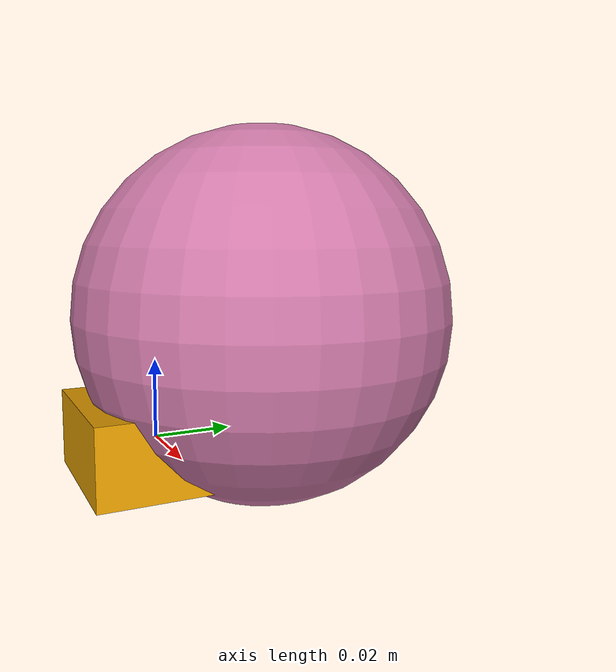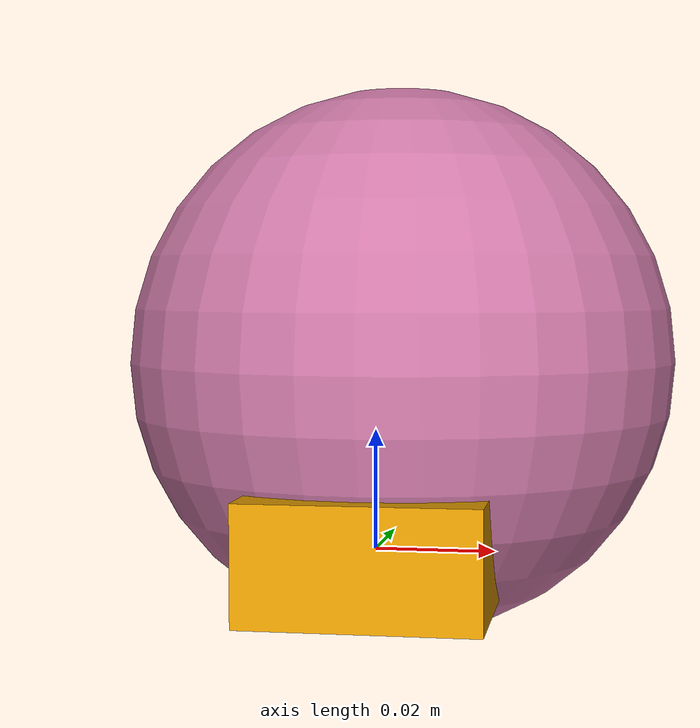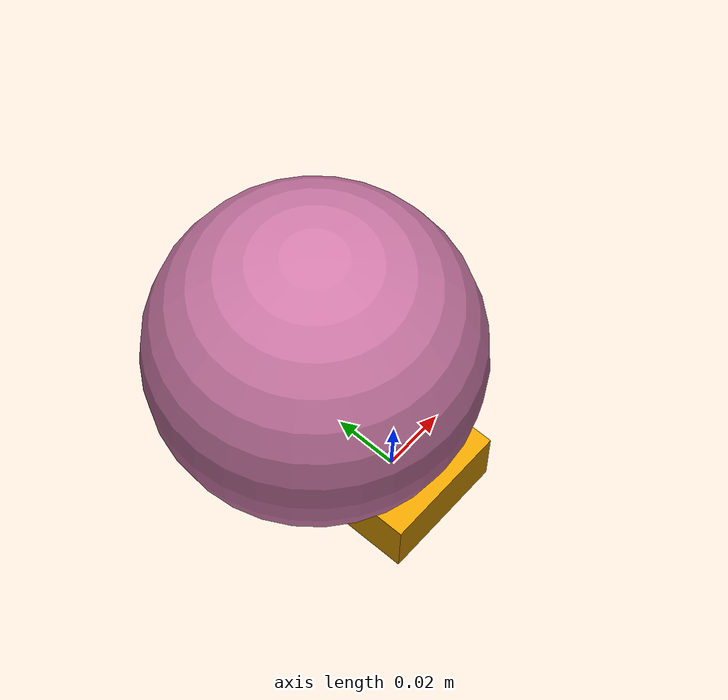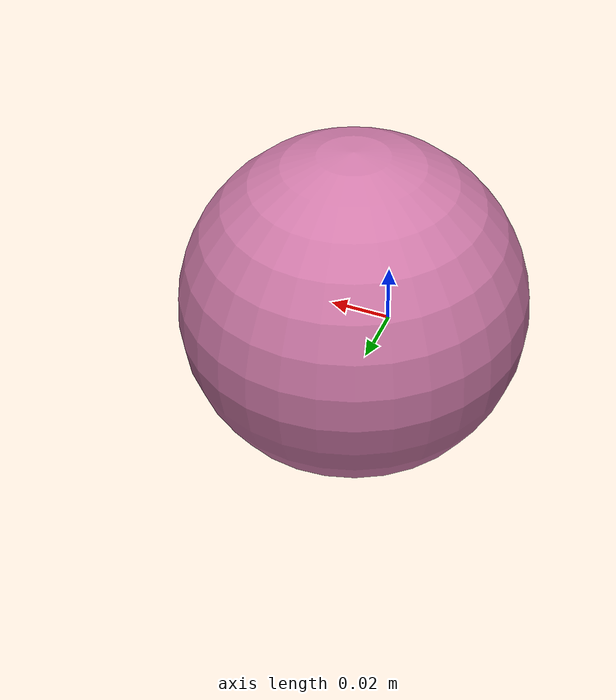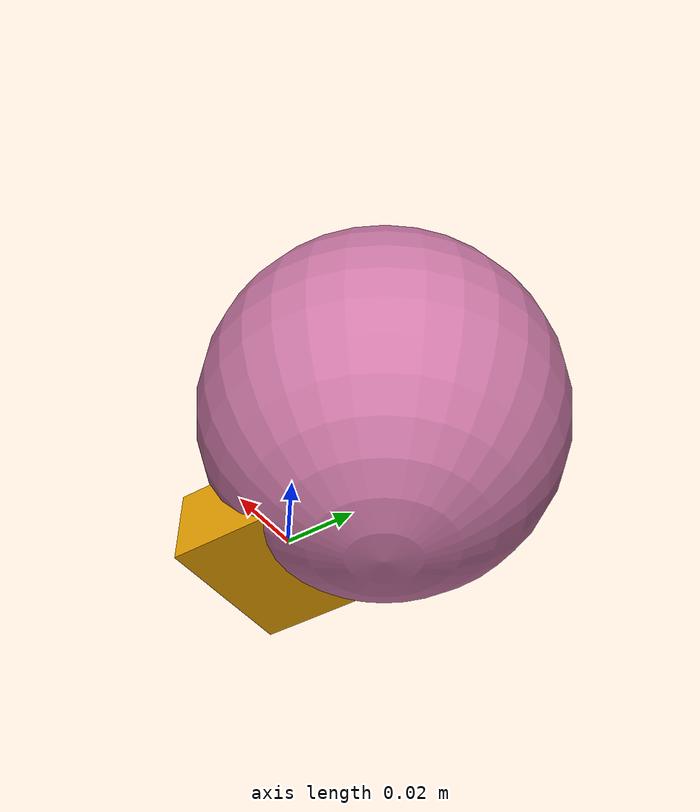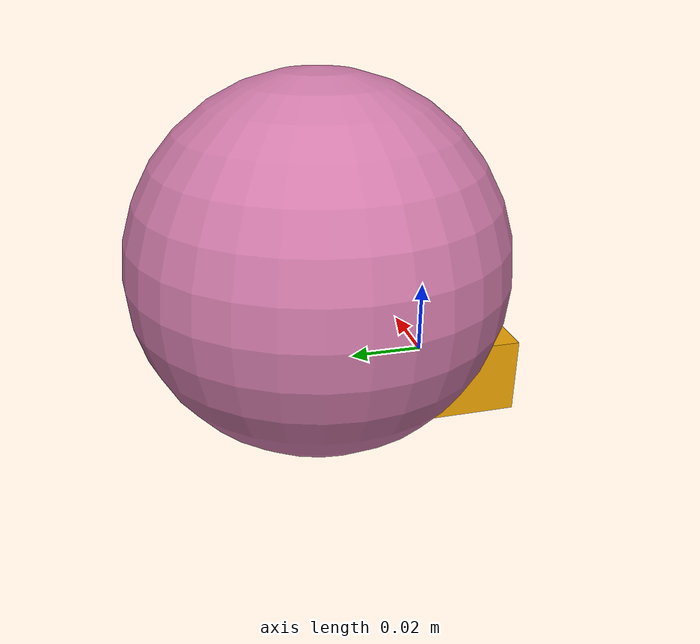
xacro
<?xml version="1.0"?>
<robot xmlns:xacro="http://www.ros.org/wiki/xacro" name="two_finger_gripper">
  <xacro:include filename="$(find two_finger_gripper_description)/urdf/finger.xacro"/>
  <xacro:arg name="with_marker" default="true"/>

  <xacro:property name="finger_x" value="0.03"/>
  <xacro:property name="palm_height" value="0.05"/>
  <xacro:property name="base_size" value="0.04 0.04 0.02"/>

  <link name="gripper_base">
    <xacro:small_inertial/>
    <visual>
      <origin xyz="0 0 0" rpy="0 0 0"/>
      <geometry><box size="${base_size}"/></geometry>
    </visual>
    <collision>
      <origin xyz="0 0 0" rpy="0 0 0"/>
      <geometry><box size="${base_size}"/></geometry>
    </collision>
  </link>
  <link name="palm">
    <xacro:small_inertial/>
    <collision>
      <geometry>
        <mesh filename="file://$(find two_finger_gripper_description)/meshes/collision/palm.stl" scale="0.001 0.001 0.001"/>
      </geometry>
    </collision>
  </link>

  <xacro:finger name="left" side="1">
    <origin xyz="${finger_x} 0 ${palm_height}" rpy="0 0 0"/>
  </xacro:finger>
  <xacro:finger name="right" side="-1">
    <origin xyz="${-finger_x} 0 ${palm_height}" rpy="0 0 0"/>
  </xacro:finger>
  <xacro:tip name="left"/>
  <xacro:tip name="right"/>

  <xacro:if value="$(arg with_marker)">
    <link name="marker_link">
      <visual>
        <geometry>
          <mesh filename="package://two_finger_gripper_description/meshes/visual/marker.stl" scale="0.001 0.001 0.001"/>
        </geometry>
      </visual>
    </link>
    <joint name="marker_joint" type="fixed">
      <parent link="palm"/>
      <child link="marker_link"/>
      <origin xyz="0 0.03 0.02" rpy="0 0 0"/>
    </joint>
  </xacro:if>
  <link name="tool0"/>

  <joint name="base_joint" type="fixed">
    <parent link="gripper_base"/>
    <child link="palm"/>
    <origin xyz="0 0 0.01" rpy="0 0 0"/>
  </joint>
  <joint name="tool_joint" type="fixed">
    <parent link="palm"/>
    <child link="tool0"/>
    <origin xyz="0 0 ${0.3 / 2}" rpy="0 0 0"/>
  </joint>

  <transmission name="left_finger_transmission">
    <type>transmission_interface/SimpleTransmission</type>
    <joint name="left_finger_joint"/>
  </transmission>
  <gazebo reference="palm">
    <material>Gazebo/Grey</material>
  </gazebo>
</robot>

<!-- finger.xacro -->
<robot xmlns:xacro="http://www.ros.org/wiki/xacro">
  <xacro:property name="inertia" value="1e-4"/>
  <xacro:property name="finger_roll" value="${radians(0)}"/>
  <xacro:property name="max_angle" value="0.8"/>

  <xacro:macro name="small_inertial" params="mass:=0.1">
    <inertial><mass value="${mass}"/><inertia ixx="${inertia}" ixy="0" ixz="0" iyy="${inertia}" iyz="0" izz="${inertia}"/></inertial>
  </xacro:macro>

  <xacro:macro name="finger" params="name side reach:=0.04 *origin">
    <link name="${name}_finger">
      <xacro:small_inertial/>
      <collision>
        <origin xyz="0 0 ${reach}" rpy="${finger_roll} 0 0"/>
        <geometry>
          <mesh filename="$(find two_finger_gripper_description)/meshes/collision/finger.stl" scale="0.001 0.001 0.001"/>
        </geometry>
      </collision>
    </link>
    <joint name="${name}_finger_joint" type="revolute">
      <parent link="palm"/>
      <child link="${name}_finger"/>
      <xacro:insert_block name="origin"/>
      <axis xyz="0 1 0"/>
      <limit lower="0" upper="${max_angle}" effort="10" velocity="1"/>
      <xacro:if value="${side == -1}">
        <mimic joint="left_finger_joint" multiplier="${side}" offset="0"/>
      </xacro:if>
    </joint>
  </xacro:macro>

  <xacro:macro name="tip" params="name reach:=0.04">
    <link name="${name}_tip">
      <collision>
        <origin xyz="0 0 ${0.01 / 2}" rpy="0 0 0"/>
        <geometry><box size="0.02 0.02 0.01"/></geometry>
      </collision>
    </link>
    <joint name="${name}_tip_joint" type="fixed">
      <parent link="${name}_finger"/>
      <child link="${name}_tip"/>
      <origin xyz="0 0 ${reach * 2}" rpy="0 0 0"/>
    </joint>
  </xacro:macro>
</robot>
